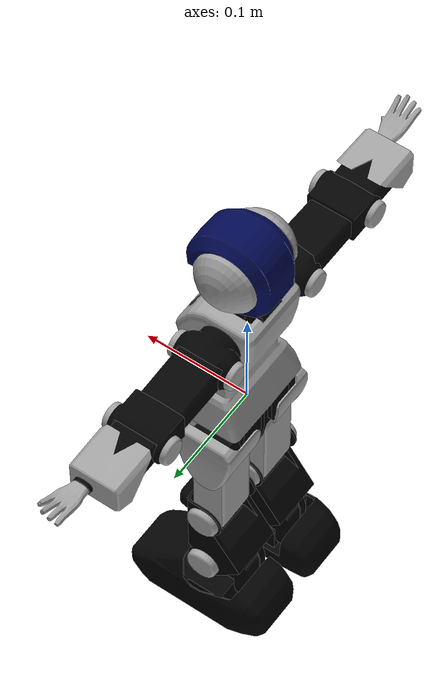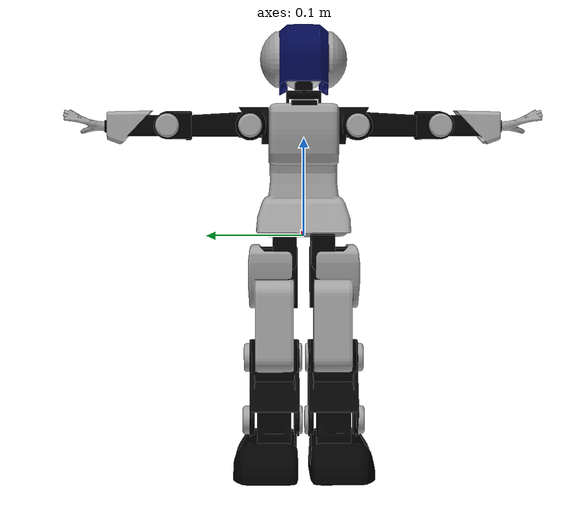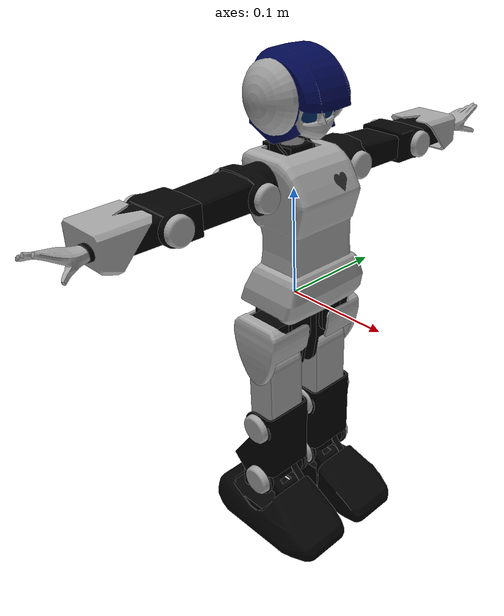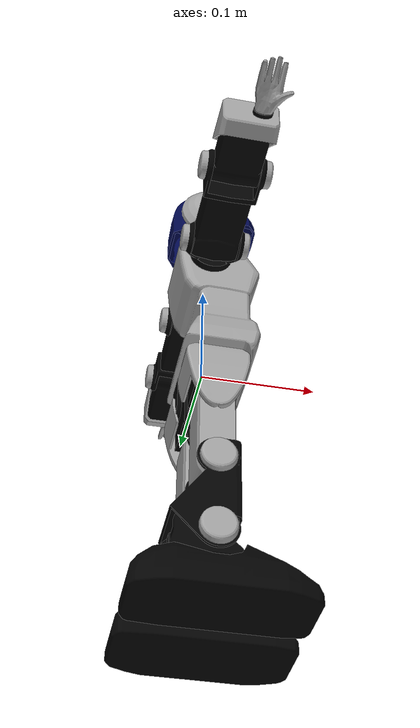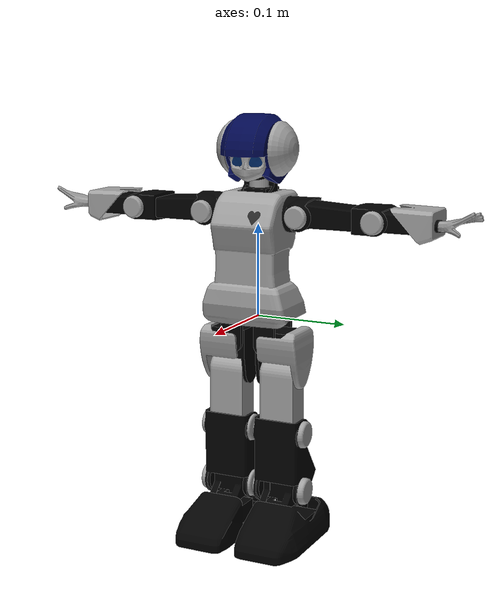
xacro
<?xml version="1.0"?>
<robot name="premaidai"
  xmlns:xacro="http://ros.org/wiki/xacro">

  <xacro:include filename="$(find premaidai_description)/urdf/common.xacro" />
  <xacro:include filename="$(find premaidai_description)/urdf/leg.urdf.xacro" />
  <xacro:include filename="$(find premaidai_description)/urdf/leg.gazebo.xacro" />
  <xacro:include filename="$(find premaidai_description)/urdf/leg.transmission.xacro" />
  <xacro:include filename="$(find premaidai_description)/urdf/arm.urdf.xacro" />
  <xacro:include filename="$(find premaidai_description)/urdf/arm.gazebo.xacro" />
  <xacro:include filename="$(find premaidai_description)/urdf/arm.transmission.xacro" />
  <xacro:include filename="$(find premaidai_description)/urdf/body.urdf.xacro" />
  <xacro:include filename="$(find premaidai_description)/urdf/body.gazebo.xacro" />
  <xacro:include filename="$(find premaidai_description)/urdf/body.transmission.xacro" />

  <link name="base_link"/>

  <xacro:premaidai_leg prefix="r" parent="base_link" side="right">
    <origin xyz="0.004225 -0.0195245 0.001412" rpy="0 0 0"/>
  </xacro:premaidai_leg>
  <xacro:premaidai_leg_gazebo prefix="r"/>
  <xacro:premaidai_leg_transmission prefix="r"/>

  <xacro:premaidai_leg prefix="l" parent="base_link" side="left">
    <origin xyz="0.004225 0.0195245 0.001412" rpy="0 0 0"/>
  </xacro:premaidai_leg>
  <xacro:premaidai_leg_gazebo prefix="l"/>
  <xacro:premaidai_leg_transmission prefix="l"/>

  <xacro:premaidai_arm prefix="r" parent="base_link" side="right">
    <origin xyz="0 -0.0359 0.113043" rpy="0 0 0"/>
  </xacro:premaidai_arm>
  <xacro:premaidai_arm_gazebo prefix="r"/>
  <xacro:premaidai_arm_transmission prefix="r"/>

  <xacro:premaidai_arm prefix="l" parent="base_link" side="left">
    <origin xyz="0 0.0359 0.113043" rpy="0 0 0"/>
  </xacro:premaidai_arm>
  <xacro:premaidai_arm_gazebo prefix="l"/>
  <xacro:premaidai_arm_transmission prefix="l"/>

  <xacro:premaidai_body parent="base_link">
    <origin xyz="0 0 0" rpy="0 0 0"/>
  </xacro:premaidai_body>
  <xacro:premaidai_body_gazebo/>
  <xacro:premaidai_body_transmission/>

  <gazebo>
    <plugin name="premaidai_plugin" filename="libPremaidAIPlugin.so"/>
  </gazebo>

</robot>

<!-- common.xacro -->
<robot xmlns:xacro="http://ros.org/wiki/xacro">

  <xacro:property name="pi" value="3.14159265359" />

</robot>

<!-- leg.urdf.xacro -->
<robot name="leg" xmlns:xacro="http://ros.org/wiki/xacro">

  <xacro:macro name="premaidai_leg" params="prefix parent side *origin">

    <xacro:if value="${side=='right'}">
      <xacro:property name="sign" value="-1"/>
    </xacro:if>

    <xacro:if value="${side=='left'}">
      <xacro:property name="sign" value="1"/>
    </xacro:if>

    <link name="${prefix}_hip_joint">
      <visual>
        <origin rpy="0 0 0" xyz="0 0 0"/>
        <geometry>
          <mesh filename="package://premaidai_description/meshes/${prefix}_hip_joint.dae"/>
        </geometry>
      </visual>
      <collision>
        <origin rpy="0 0 0" xyz="0 0 0"/>
        <geometry>
          <mesh filename="package://premaidai_description/meshes/${prefix}_hip_joint.dae"/>
        </geometry>
      </collision>
      <inertial>
        <mass value="0.0143"/>
        <origin xyz="0.000000 ${sign*0.000183} -0.010532"/>
        <inertia ixx="20.138887e-5" ixy="-0.000001e-5" ixz="0.0e-5" iyy="53.757824e-5" iyz="${sign*-0.518773e-5}" izz="46.127151e-5"/>
      </inertial>
    </link>

    <link name="${prefix}_uleg_root">
      <visual>
        <origin rpy="0 0 0" xyz="0 0 0"/>
        <geometry>
          <mesh filename="package://premaidai_description/meshes/${prefix}_uleg_root.dae"/>
        </geometry>
      </visual>
      <collision>
        <origin rpy="0 0 0" xyz="0 0 0"/>
        <geometry>
          <mesh filename="package://premaidai_description/meshes/${prefix}_uleg_root.dae"/>
        </geometry>
      </collision>
      <inertial>
        <mass value="0.0648"/>
        <origin xyz="-0.000000 ${sign*0.013420} -0.004373"/>
        <inertia ixx="246.003845e-5" ixy="${sign*-0.001517e-5}" ixz="-0.001688e-5" iyy="191.922195e-5" iyz="${sign*-6.165664e-5}" izz="238.454895e-5"/>
      </inertial>
    </link>

    <link name="${prefix}_uleg">
      <visual>
        <origin rpy="0 0 0" xyz="0 0 0"/>
        <geometry>
          <mesh filename="package://premaidai_description/meshes/${prefix}_uleg.dae"/>
        </geometry>
      </visual>
      <collision>
        <origin rpy="0 0 0" xyz="0 0 0"/>
        <geometry>
          <mesh filename="package://premaidai_description/meshes/${prefix}_uleg.dae"/>
        </geometry>
      </collision>
      <inertial>
        <mass value="0.1134"/>
        <origin xyz="-0.000000 0.000001 -0.032601"/>
        <inertia ixx="884.390869e-5" ixy="0.000002e-5" ixz="-0.000046e-5" iyy="825.489990e-5" iyz="-0.000031e-5" izz="222.801773e-5"/>
      </inertial>
    </link>

    <link name="${prefix}_lleg">
      <visual>
        <origin rpy="0 0 0" xyz="0 0 0"/>
        <geometry>
          <mesh filename="package://premaidai_description/meshes/${prefix}_lleg.dae"/>
        </geometry>
      </visual>
      <collision>
        <origin rpy="0 0 0" xyz="0 0 0"/>
        <geometry>
          <mesh filename="package://premaidai_description/meshes/${prefix}_lleg.dae"/>
        </geometry>
      </collision>
      <inertial>
        <mass value="0.0719"/>
        <origin xyz="-0.001624 ${sign*0.002494} -0.034776"/>
        <inertia ixx="735.568420e-5" ixy="${sign*-1.871153e-5}" ixz="-35.647034e-5" iyy="434.662354e-5" iyz="${sign*0.247592e-5}" izz="480.555054e-5"/>
      </inertial>
    </link>

    <link name="${prefix}_ankle">
      <visual>
        <origin rpy="0 0 0" xyz="0 0 0"/>
        <geometry>
          <mesh filename="package://premaidai_description/meshes/${prefix}_ankle.dae"/>
        </geometry>
      </visual>
      <collision>
        <origin rpy="0 0 0" xyz="0 0 0"/>
        <geometry>
          <mesh filename="package://premaidai_description/meshes/${prefix}_ankle.dae"/>
        </geometry>
      </collision>
      <inertial>
        <mass value="0.0571"/>
        <origin xyz="-0.009629 0.000379 -0.003702"/>
        <inertia ixx="175.244446e-5" ixy="-0.000004e-5" ixz="11.289989e-5" iyy="257.425598e-5" iyz="-0.000002e-5" izz="224.547821e-5"/>
      </inertial>
    </link>

    <link name="${prefix}_foot">
      <visual>
        <origin rpy="0 0 0" xyz="0 0 0"/>
        <geometry>
          <mesh filename="package://premaidai_description/meshes/${prefix}_foot.dae"/>
        </geometry>
      </visual>
      <collision>
        <origin rpy="0 0 0" xyz="0 0 0"/>
        <geometry>
          <mesh filename="package://premaidai_description/meshes/${prefix}_foot.dae"/>
        </geometry>
      </collision>
      <inertial>
        <mass value="0.0941"/>
        <origin xyz="0.005014 ${sign*0.008793} -0.004123"/>
        <inertia ixx="383.406982e-5" ixy="${sign*11.222215e-5}" ixz="12.157411e-5" iyy="1013.430359e-5" iyz="${sign*-1.649494e-5}" izz="1206.411377e-5"/>
      </inertial>
    </link>

    <joint name="${prefix}_hpz_joint" type="revolute">
      <xacro:insert_block name="origin" />
      <axis xyz="0 0 1"/>
      <limit lower="${-81.0/180.0 * pi}" upper="${102.43/180.0 * pi}" effort="1.3712" velocity="7.480"/>
      <dynamics damping="0.4" friction="0.0"/>
      <parent link="${parent}"/>
      <child link="${prefix}_hip_joint"/>
    </joint>

    <joint name="${prefix}_hpx_joint" type="revolute">
      <origin xyz="0 ${sign*-0.0021} -0.028" rpy="0 0 0"/>
      <axis xyz="1 0 0"/>
      <xacro:if value="${side=='right'}">
        <limit lower="${-25.35/180.0 * pi}" upper="${22.713/180.0 * pi}" effort="1.3712" velocity="7.480"/>
      </xacro:if>
      <xacro:if value="${side=='left'}">
        <limit lower="${-22.713/180.0 * pi}" upper="${25.35/180.0 * pi}" effort="1.3712" velocity="7.480"/>
      </xacro:if>
      <dynamics damping="0.4" friction="0.0"/>
      <parent link="${prefix}_hip_joint"/>
      <child link="${prefix}_uleg_root"/>
    </joint>

    <joint name="${prefix}_hpy_joint" type="revolute">
      <origin xyz="0 ${sign*0.0128525} -0.034358" rpy="0 0 0"/>
      <axis xyz="0 1 0"/>
      <limit lower="${-91.60/180.0 * pi}" upper="${90.213/180.0 * pi}" effort="1.3712" velocity="7.480"/>
      <dynamics damping="0.4" friction="0.0"/>
      <parent link="${prefix}_uleg_root"/>
      <child link="${prefix}_uleg"/>
    </joint>

    <joint name="${prefix}_kny_joint" type="revolute">
      <origin xyz="0 0 -0.0652" rpy="0 0 0"/>
      <axis xyz="0 1 0"/>
      <limit lower="${-2.0925/180.0 * pi}" upper="${119.64/180.0 * pi}" effort="1.3712" velocity="7.480"/>
      <dynamics damping="0.4" friction="0.0"/>
      <parent link="${prefix}_uleg"/>
      <child link="${prefix}_lleg"/>
    </joint>

    <joint name="${prefix}_aky_joint" type="revolute">
      <origin xyz="0 0 -0.065" rpy="0 0 0"/>
      <axis xyz="0 1 0"/>
      <limit lower="${-61.3575/180.0 * pi}" upper="${24.3/180.0 * pi}" effort="1.3712" velocity="7.480"/>
      <dynamics damping="0.4" friction="0.0"/>
      <parent link="${prefix}_lleg"/>
      <child link="${prefix}_ankle"/>
    </joint>

    <joint name="${prefix}_akx_joint" type="revolute">
      <origin xyz="0 0 -0.040677" rpy="0 0 0"/>
      <axis xyz="1 0 0"/>
      <xacro:if value="${side=='right'}">
        <limit lower="${-38.23875/180.0 * pi}" upper="${37.29375/180.0 * pi}" effort="1.3712" velocity="7.480"/>
      </xacro:if>
      <xacro:if value="${side=='left'}">
        <limit lower="${-37.29375/180.0 * pi}" upper="${38.23875/180.0 * pi}" effort="1.3712" velocity="7.480"/>
      </xacro:if>
      <dynamics damping="0.4" friction="0.0"/>
      <parent link="${prefix}_ankle"/>
      <child link="${prefix}_foot"/>
    </joint>

  </xacro:macro>
</robot>

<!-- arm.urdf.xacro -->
<robot name="arm" xmlns:xacro="http://ros.org/wiki/xacro">

  <xacro:macro name="premaidai_arm" params="prefix parent side *origin">

    <xacro:if value="${side=='right'}">
      <xacro:property name="sign" value="-1"/>
    </xacro:if>

    <xacro:if value="${side=='left'}">
      <xacro:property name="sign" value="1"/>
    </xacro:if>

    <link name="${prefix}_uarm_joint">
      <visual>
        <origin rpy="0 0 0" xyz="0 0 0"/>
        <geometry>
          <mesh filename="package://premaidai_description/meshes/${prefix}_uarm_joint.dae"/>
        </geometry>
      </visual>
      <collision>
        <origin rpy="0 0 0" xyz="0 0 0"/>
        <geometry>
          <mesh filename="package://premaidai_description/meshes/${prefix}_uarm_joint.dae"/>
        </geometry>
      </collision>
      <inertial>
        <mass value="0.0131"/>
        <origin xyz="-0.000000 ${sign*0.005109} 0.000865"/>
        <inertia ixx="39.090332e-5" ixy="0.000021e-5" ixz="0.000003e-5" iyy="116.438423e-5" iyz="${sign*-4.044059e-5}" izz="132.243393e-5"/>
      </inertial>
    </link>

    <link name="${prefix}_uarm">
      <visual>
        <origin rpy="0 0 0" xyz="0 0 0"/>
        <geometry>
          <mesh filename="package://premaidai_description/meshes/${prefix}_uarm.dae"/>
        </geometry>
      </visual>
      <collision>
        <origin rpy="0 0 0" xyz="0 0 0"/>
        <geometry>
          <mesh filename="package://premaidai_description/meshes/${prefix}_uarm.dae"/>
        </geometry>
      </collision>
      <inertial>
        <mass value="0.0712"/>
        <origin xyz="-0.000001 ${sign*0.021640} 0.000670"/>
        <inertia ixx="356.620514e-5" ixy="-0.000020e-5" ixz="0.000026e-5" iyy="126.890160e-5" iyz="${sign*4.816492e-5}" izz="414.000244e-5"/>
      </inertial>
    </link>

    <link name="${prefix}_larm_joint">
      <visual>
        <origin rpy="0 0 0" xyz="0 0 0"/>
        <geometry>
          <mesh filename="package://premaidai_description/meshes/${prefix}_larm_joint.dae"/>
        </geometry>
      </visual>
      <collision>
        <origin rpy="0 0 0" xyz="0 0 0"/>
        <geometry>
          <mesh filename="package://premaidai_description/meshes/${prefix}_larm_joint.dae"/>
        </geometry>
      </collision>
      <inertial>
        <mass value="0.0124"/>
        <origin xyz="-0.008596 ${sign*0.015762} 0.002150"/>
        <inertia ixx="70.485497e-5" ixy="${sign*104.342163e-5}" ixz="-0.000005e-5" iyy="188.648819e-5" iyz="${sign*-3.846500e-5}" izz="236.494141e-5"/>
      </inertial>
    </link>

    <link name="${prefix}_larm">
      <visual>
        <origin rpy="0 0 0" xyz="0 0 0"/>
        <geometry>
          <mesh filename="package://premaidai_description/meshes/${prefix}_larm.dae"/>
        </geometry>
      </visual>
      <collision>
        <origin rpy="0 0 0" xyz="0 0 0"/>
        <geometry>
          <mesh filename="package://premaidai_description/meshes/${prefix}_larm.dae"/>
        </geometry>
      </collision>
      <inertial>
        <mass value="0.0812"/>
        <origin xyz="-0.008596 ${sign*0.027572} 0.000420"/>
        <inertia ixx="342.361237e-5" ixy="${sign*-0.000036e-5}" ixz="0.000012e-5" iyy="141.587677e-5" iyz="${sign*0.382193e-5}" izz="414.116486e-5"/>
      </inertial>
    </link>

    <link name="${prefix}_hand">
      <visual>
        <origin rpy="0 0 0" xyz="0 0 0"/>
        <geometry>
          <mesh filename="package://premaidai_description/meshes/${prefix}_hand.dae"/>
        </geometry>
      </visual>
      <collision>
        <origin rpy="0 0 0" xyz="0 0 0"/>
        <geometry>
          <mesh filename="package://premaidai_description/meshes/${prefix}_hand.dae"/>
        </geometry>
      </collision>
      <inertial>
        <mass value="0.0046"/>
        <origin xyz="0.001817 ${sign*0.018911} 0.002717"/>
        <inertia ixx="8.193970e-5" ixy="${sign*-0.178483e-5}" ixz="0.194812e-5" iyy="3.111708e-5" iyz="${sign*-2.003531e-5}" izz="9.081884e-5"/>
      </inertial>
    </link>

    <link name="${prefix}_hand_ee">
      <collision>
        <geometry>
          <box size="0.01 0.01 0.01"/>
        </geometry>
        <origin rpy="0 0 0" xyz="-0.01 0 0"/>
      </collision>
    </link>

    <joint name="${prefix}_shy_joint" type="revolute">
      <xacro:insert_block name="origin" />
      <axis xyz="0 1 0"/>
      <limit lower="${-108.0/180.0 * pi}" upper="${128.25/180.0 * pi}" effort="1.3712" velocity="7.480"/>
      <dynamics damping="0.4" friction="0.0"/>
      <parent link="${parent}"/>
      <child link="${prefix}_uarm_joint"/>
    </joint>

    <joint name="${prefix}_shx_joint" type="revolute">
      <origin xyz="0 ${sign*0.0189} 0" rpy="0 0 0"/>
      <axis xyz="1 0 0"/>
      <xacro:if value="${side=='right'}">
        <limit lower="${-3.0375/180.0 * pi}" upper="${91.56375/180.0 * pi}" effort="0.9114" velocity="5.817"/>
      </xacro:if>
      <xacro:if value="${side=='left'}">
        <limit lower="${-91.56375/180.0 * pi}" upper="${3.0375/180.0 * pi}" effort="0.9114" velocity="5.817"/>
      </xacro:if>
      <dynamics damping="0.4" friction="0.0"/>
      <parent link="${prefix}_uarm_joint"/>
      <child link="${prefix}_uarm"/>
    </joint>

    <joint name="${prefix}_ely_joint" type="revolute">
      <origin xyz="0.0088013 ${sign*0.060007} 0" rpy="0 0 0"/>
      <axis xyz="0 1 0"/>
      <limit lower="${-128.68875/180.0 * pi}" upper="${134.325/180.0 * pi}" effort="0.9114" velocity="5.817"/>
      <dynamics damping="0.4" friction="0.0"/>
      <parent link="${prefix}_uarm"/>
      <child link="${prefix}_larm_joint"/>
    </joint>

    <joint name="${prefix}_elx_joint" type="revolute">
      <origin xyz="0 ${sign*0.024054} 0" rpy="0 0 0"/>
      <axis xyz="1 0 0"/>
      <xacro:if value="${side=='right'}">
        <limit lower="${-13.5/180.0 * pi}" upper="${118.96875/180.0 * pi}" effort="0.9114" velocity="5.817"/>
      </xacro:if>
      <xacro:if value="${side=='left'}">
        <limit lower="${-118.96875/180.0 * pi}" upper="${13.5/180.0 * pi}" effort="0.9114" velocity="5.817"/>
      </xacro:if>
      <dynamics damping="0.4" friction="0.0"/>
      <parent link="${prefix}_larm_joint"/>
      <child link="${prefix}_larm"/>
    </joint>

    <joint name="${prefix}_wry_joint" type="revolute">
      <origin xyz="0 ${sign*0.061348} 0" rpy="0 0 0"/>
      <axis xyz="0 1 0"/>
      <limit lower="${-135.0/180.0 * pi}" upper="${118.125/180.0 * pi}" effort="0.9114" velocity="5.817"/>
      <dynamics damping="0.4" friction="0.0"/>
      <parent link="${prefix}_larm"/>
      <child link="${prefix}_hand"/>
    </joint>

    <joint name="${prefix}_hand_ee_fixed_joint" type="fixed">
      <parent link="${prefix}_hand" />
      <child link = "${prefix}_hand_ee" />
      <origin xyz="0.0 0.0 0.0" rpy="0.0 0.0 0.0" />
    </joint>

  </xacro:macro>
</robot>

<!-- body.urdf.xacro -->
<robot name="body" xmlns:xacro="http://ros.org/wiki/xacro">

  <xacro:macro name="premaidai_body" params="parent *origin">

    <link name="body">
      <visual>
        <geometry>
          <mesh filename="package://premaidai_description/meshes/body.dae"/>
        </geometry>
      </visual>
      <collision>
        <geometry>
          <mesh filename="package://premaidai_description/meshes/body.dae"/>
        </geometry>
      </collision>
      <inertial>
        <mass value="0.4426"/>
        <origin xyz="0.008509 0.000002 0.070698"/>
        <inertia ixx="2871.143311e-5" ixy="-0.001151e-5" ixz="237.094467e-5" iyy="2672.078857e-5" iyz="-0.003379e-5" izz="1188.332153e-5"/>
      </inertial>
    </link>

    <link name="neck_pitch">
      <visual>
        <geometry>
          <mesh filename="package://premaidai_description/meshes/neck_pitch.dae"/>
        </geometry>
      </visual>
      <collision>
        <geometry>
          <mesh filename="package://premaidai_description/meshes/neck_pitch.dae"/>
        </geometry>
      </collision>
      <inertial>
        <mass value="0.01"/>
        <origin xyz="-0.006449 0.000002 0.008964"/>
        <inertia ixx="6.489763e-5" ixy="-0.000003e-5" ixz="-0.024047e-5" iyy="2.296302e-5" iyz="-0.000005e-5" izz="6.197822e-5"/>
      </inertial>
    </link>

    <link name="head_yaw">
      <visual>
        <geometry>
          <mesh filename="package://premaidai_description/meshes/neck_yaw.dae"/>
        </geometry>
      </visual>
      <collision>
        <geometry>
          <mesh filename="package://premaidai_description/meshes/neck_yaw.dae"/>
        </geometry>
      </collision>
      <inertial>
        <mass value="0.01"/>
        <origin xyz="0.008100 0.000002 0.017871"/>
        <inertia ixx="12.636111e-5" ixy="-0.000001e-5" ixz="0.0" iyy="23.689224e-5" iyz="0.0" izz="17.372910e-5"/>
      </inertial>
    </link>

    <link name="head">
      <visual>
        <geometry>
          <mesh filename="package://premaidai_description/meshes/head.dae"/>
        </geometry>
      </visual>
      <collision>
        <geometry>
          <mesh filename="package://premaidai_description/meshes/head.dae"/>
        </geometry>
      </collision>
      <inertial>
        <mass value="0.1449"/>
        <origin xyz="0.014213 0.000001 0.011813"/>
        <inertia ixx="650.041687e-5" ixy="-0.000280e-5" ixz="49.702934e-5" iyy="598.413635e-5" iyz="-0.000379e-5" izz="588.398682e-5"/>
      </inertial>
    </link>

    <joint name="body_to_base_link" type="fixed">
      <origin xyz="0 0 0" rpy="0 0 0"/>
      <parent link="${parent}"/>
      <child link="body"/>
    </joint>

    <joint name="head_ny_joint" type="revolute">
      <origin xyz="0.0038738 0 0.132809" rpy="0 0 0"/>
      <axis xyz="0 1 0"/>
      <limit lower="${-10.125/180.0 * pi}" upper="${23.625/180.0 * pi}" effort="0.9114" velocity="5.817"/>
      <dynamics damping="0.4" friction="0.0"/>
      <parent link="body"/>
      <child link="neck_pitch"/>
    </joint>

    <joint name="head_nz_joint" type="revolute">
      <origin xyz="-0.0103485 0 0.011103" rpy="0 0 0"/>
      <axis xyz="0 0 1"/>
      <limit lower="${-47.25/180.0 * pi}" upper="${47.25/180.0 * pi}" effort="0.9114" velocity="5.817"/>
      <dynamics damping="0.4" friction="0.0"/>
      <parent link="neck_pitch"/>
      <child link="head_yaw"/>
    </joint>

    <joint name="head_nx_joint" type="revolute">
      <origin xyz="0 0 0.0129" rpy="0 0 0"/>
      <axis xyz="1 0 0"/>
      <limit lower="${-21.9375/180.0 * pi}" upper="${28.6875/180.0 * pi}" effort="0.9114" velocity="5.817"/>
      <dynamics damping="0.4" friction="0.0"/>
      <parent link="head_yaw"/>
      <child link="head"/>
    </joint>
  </xacro:macro>
</robot>
